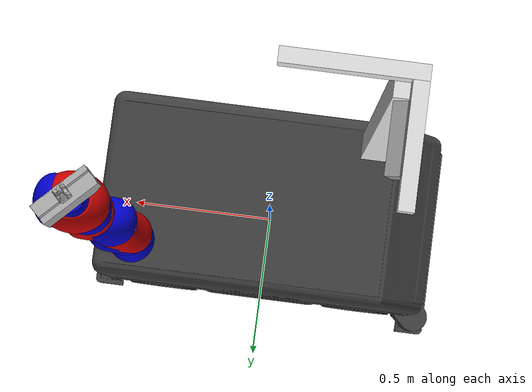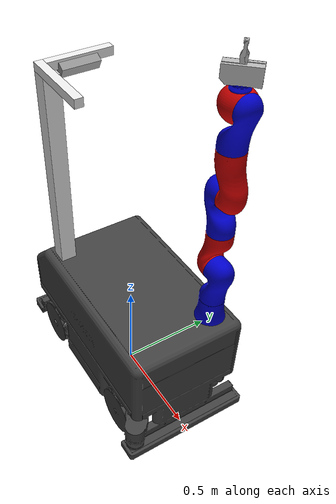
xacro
<?xml version="1.0"?>
<robot name="omnirob" xmlns:xacro="http://ros.org/wiki/xacro">
	<xacro:include
		filename="$(find omnirob_description)/urdf/xacro/omnirob.urdf.xacro" />
	<xacro:include filename="$(find omnirob_description)/urdf/xacro/lbr.urdf.xacro" />
	<xacro:include filename="$(find omnirob_description)/urdf/xacro/pole.urdf.xacro" />
	<xacro:include filename="$(find wsg_description)/urdf/wsg.urdf.xacro" />
	<xacro:include filename="$(find camera_description)/urdf/xacro/asus_xtion.urdf.xacro" />

	<xacro:omnirob_base></xacro:omnirob_base>

	<xacro:lbr name="lbr" parent="omnirob">
		<origin xyz="0.42 0.18 0.655" rpy="0 0 -1.5708" />
	</xacro:lbr>

	<xacro:pole name="pole" parent="base_link">
		<origin xyz="-0.35 -0.25 0.64" rpy="0 0 0" />
	</xacro:pole>

	<xacro:asus_xtion name="pole_camera" parent="pole_top2_link">
		<origin xyz="0.14 -0.01 0" rpy="0 0.5 -1.57" />
	</xacro:asus_xtion>

	<xacro:wsg name="wsg" parent_link_name="lbr">
	</xacro:wsg>

</robot>

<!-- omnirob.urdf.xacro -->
<robot xmlns:xacro="http://ros.org/wiki/xacro">
    <xacro:macro name="omnirob_base">
        <material name="Gray">
            <color rgba="0.25 0.25 0.25 1.0"/>
        </material>

        <link name="base_link" >
          <visual>
            <origin xyz="0 0 0" rpy="0 0 0" />
            <geometry>
              <mesh filename="package://omnirob_description/meshes/omnirob_hull.stl" scale="0.001 0.001 0.001"/>
            </geometry>
           <material name="Gray"/>
          </visual>
          <collision>
            <origin xyz="0 0 0" rpy="0 0 0" />
            <geometry>
              <mesh filename="package://omnirob_description/meshes/omnirob_hull_low_res.stl" scale="0.001 0.001 0.001"/>
            </geometry>
          </collision>
        </link>

        <link name="laser_front_link">
        </link>

        <link name="laser_rear_link">
        </link>

        <joint name="laser_front_joint" type="fixed">
          <parent link="base_link" />
          <child link="laser_front_link" />
          <origin xyz="0.542477 -0.317722 0.13664" rpy="0 0 -0.78893" />
        </joint>

        <joint name="laser_rear_joint" type="fixed">
          <parent link="base_link" />
          <child link="laser_rear_link" />
          <origin xyz="-0.534443 0.32895 0.13664" rpy="0 0 2.31624" />
		</joint>
	</xacro:macro>
</robot>

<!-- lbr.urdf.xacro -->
<!-- FROM: https://github.com/IDSCETHZurich/re_trajectory-generator -->
<robot xmlns:xacro="http://ros.org/wiki/xacro">

	<xacro:include filename="$(find omnirob_description)/urdf/xacro/lbr_only.urdf.xacro"/>

	<xacro:macro name="lbr" params="parent name *origin">

	<xacro:lbr_only name="${name}">
	</xacro:lbr_only>

	<joint name="${parent}_base_joint" type="fixed" >
		<origin xyz="0.42 0.18 0.655" rpy="0 0 -1.5708" />
		<parent link="base_link" />
		<child link="${name}_0_link" />
	</joint>

	</xacro:macro>

</robot>

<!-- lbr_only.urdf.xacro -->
<!-- FROM: https://github.com/IDSCETHZurich/re_trajectory-generator -->
<robot xmlns:xacro="http://ros.org/wiki/xacro">

  <!-- Import all Gazebo-customization elements, including Gazebo colors -->
	<xacro:include filename="$(find omnirob_description)/urdf/xacro/lbr_only.gazebo" />
	<!-- Import Rviz colors -->
	<xacro:include filename="$(find omnirob_description)/urdf/xacro/lbr_materials.xacro" />

	<xacro:macro name="lbr_only" params="name">

		<!-- Used for fixing robot to Gazebo 'base_link' -->

		<link name="${name}_0_link">
			<inertial>
				<origin xyz="0 0 0" rpy="0 0 0" />
				<mass value="1.0" />
				<inertia ixx="0.01" ixy="0" ixz="0" iyy="0.01" iyz="0" izz="0.01" />
			</inertial>

			<visual>
				<origin xyz="0 0 0" rpy="0 0 0" />
				<geometry>
					<mesh filename="package://omnirob_description/meshes/lbr0.stl" />
				</geometry>
				<material name="Blue" />
			</visual>

			<collision>
				<origin xyz="0 0 0" rpy="0 0 0" />
				<geometry>
					<mesh filename="package://omnirob_description/meshes/lbr0_low_res.stl" />
				</geometry>
			</collision>
		</link>

		<!-- joint between arm_0_link and arm_1_link -->
		<joint name="${name}_1_joint" type="revolute">
			<origin xyz="0 0 0.1105" rpy="0 0 0" />
			<parent link="${name}_0_link" />
			<child link="${name}_1_link" />
			<axis xyz="0 0 1" />
			<dynamics damping="25" />
			<limit effort="200" velocity="1.9634" lower="-2.9670" upper="2.9670" />
		</joint>

		<link name="${name}_1_link">
			<inertial>
				<origin xyz="0 0 0" rpy="0 0 0" />
				<mass value="5.9907" />
				<inertia ixx="0.01" ixy="0" ixz="0" iyy="0.01" iyz="0" izz="0.01" />
			</inertial>

			<visual>
				<origin xyz="0 0 0" rpy="0 0 0" />
				<geometry>
					<mesh filename="package://omnirob_description/meshes/lbr1.stl" />
				</geometry>
				<material name="Blue" />
			</visual>

			<collision>
				<origin xyz="0 0 0" rpy="0 0 0" />
				<geometry>
					<mesh filename="package://omnirob_description/meshes/lbr1_low_res.stl" />
				</geometry>
			</collision>
		</link>

		<!-- joint between arm_1_link and arm_2_link -->
		<joint name="${name}_2_joint" type="revolute">
			<origin xyz="0 0 0.1915" rpy="1.5708 0 0" />
			<parent link="${name}_1_link" />
			<child link="${name}_2_link" />
			<axis xyz="0 0 1" />
			<dynamics damping="25" />
			<limit effort="200" velocity="1.9634" lower="-2.0943" upper="2.0943" />
		</joint>

		<link name="${name}_2_link">
			<inertial>
				<origin xyz="0 0 0.002" rpy="0 0 0" />
				<mass value="5.734939" />
				<inertia ixx="0.03" ixy="0" ixz="0" iyy="0.03" iyz="0" izz="0.03" />
			</inertial>

			<visual>
				<origin xyz="0 0 0.002" rpy="0 0 0" />
				<geometry>
					<mesh filename="package://omnirob_description/meshes/lbr2.stl" />
				</geometry>
				<material name="Red" />
			</visual>

			<collision>
				<origin xyz="0 0 0.002" rpy="0 0 0" />
				<geometry>
					<mesh filename="package://omnirob_description/meshes/lbr2_low_res.stl" />
				</geometry>
			</collision>
		</link>

		<!-- joint between arm_2_link and arm_3_link -->
		<joint name="${name}_3_joint" type="revolute">
			<origin xyz="0 0.2085 0" rpy="-1.5708 0 0" />
			<parent link="${name}_2_link" />
			<child link="${name}_3_link" />
			<axis xyz="0 0 1" />
			<dynamics damping="25" />
			<limit effort="100" velocity="1.9634" lower="-2.9670" upper="2.9670" />
		</joint>

		<link name="${name}_3_link">
			<inertial>
				<origin xyz="0 -0.002 0" rpy="0 0 0" />
				<mass value="4.214668" />
				<inertia ixx="0.03" ixy="0" ixz="0" iyy="0.03" iyz="0" izz="0.03" />
			</inertial>

			<visual>
				<origin xyz="0 -0.002 0" rpy="0 0 0" />
				<geometry>
					<mesh filename="package://omnirob_description/meshes/lbr3.stl" />
				</geometry>
				<material name="Blue" />
			</visual>

			<collision>
				<origin xyz="0 -0.002 0" rpy="0 0 0" />
				<geometry>
					<mesh filename="package://omnirob_description/meshes/lbr3_low_res.stl" />
				</geometry>
			</collision>
		</link>

		<!-- joint between arm_3_link and arm_4_link -->
		<joint name="${name}_4_joint" type="revolute">
			<origin xyz="0 0 0.1915" rpy="-1.5708 0 0" />
			<parent link="${name}_3_link" />
			<child link="${name}_4_link" />
			<axis xyz="0 0 1" />
			<dynamics damping="25" />
			<limit effort="100" velocity="1.9634" lower="-2.0943" upper="2.0943" />
		</joint>

		<link name="${name}_4_link">
			<inertial>
				<origin xyz="0 0 0" rpy="0 0 0" />
				<mass value="3.669819" />
				<inertia ixx="0.03" ixy="0" ixz="0" iyy="0.03" iyz="0" izz="0.03" />
			</inertial>

			<visual>
				<origin xyz="0 0 0" rpy="0 0 0" />
				<geometry>
					<mesh filename="package://omnirob_description/meshes/lbr4.stl" />
				</geometry>
				<material name="Red" />
			</visual>

			<collision>
				<origin xyz="0 0 0" rpy="0 0 0" />
				<geometry>
					<mesh filename="package://omnirob_description/meshes/lbr4_low_res.stl" />
				</geometry>
			</collision>
		</link>

		<!-- joint between arm_4_link and arm_5_link -->
		<joint name="${name}_5_joint" type="revolute">
			<origin xyz="0 -0.2085 0" rpy="1.5708 0 0" />
			<parent link="${name}_4_link" />
			<child link="${name}_5_link" />
			<axis xyz="0 0 1" />
			<dynamics damping="25" />
			<limit effort="100" velocity="3.1415926" lower="-2.9670" upper="2.9670" />
		</joint>
		<link name="${name}_5_link">
			<inertial>
				<origin xyz="0 0 0" rpy="0 0 0" />
				<mass value="2.313272" />
				<inertia ixx="0.03" ixy="0" ixz="0" iyy="0.03" iyz="0" izz="0.03" />
			</inertial>

			<visual>
				<origin xyz="0 0 0" rpy="0 0 0" />
				<geometry>
					<mesh filename="package://omnirob_description/meshes/lbr5.stl" />
				</geometry>
				<material name="Blue" />
			</visual>

			<collision>
				<origin xyz="0 0 0" rpy="0 0 0" />
				<geometry>
					<mesh filename="package://omnirob_description/meshes/lbr5_low_res.stl" />
				</geometry>
			</collision>
		</link>

		<!-- joint between arm_5_link and arm_6_link -->
		<joint name="${name}_6_joint" type="revolute">
			<origin xyz="0 0 0.1815" rpy="1.5708 0 0" />
			<parent link="${name}_5_link" />
			<child link="${name}_6_link" />
			<axis xyz="0 0 1" />
			<dynamics damping="25" />
			<limit effort="30" velocity="1.9634" lower="-2.0943951" upper="2.0943951" />
		</joint>
		<link name="${name}_6_link">
			<inertial>
				<origin xyz="0 0 0" rpy="0 0 0" />
				<mass value="2.057856" />
				<inertia ixx="0.01" ixy="0" ixz="0" iyy="0.01" iyz="0" izz="0.01" />
			</inertial>

			<visual>
				<origin xyz="0 0 -0.046" rpy="0 0 0" />
				<geometry>
					<mesh filename="package://omnirob_description/meshes/lbr6.stl" />
				</geometry>
				<material name="Red" />
			</visual>

			<collision>
				<origin xyz="0 0 -0.046" rpy="0 0 0" />
				<geometry>
					<mesh filename="package://omnirob_description/meshes/lbr6_low_res.stl" />
				</geometry>
			</collision>
		</link>

		<!-- joint between arm_6_link and arm_7_link -->
		<joint name="${name}_7_joint" type="revolute">
			<origin xyz="0 0.057 0" rpy="-1.5708 0 0" />
			<parent link="${name}_6_link" />
			<child link="${name}_7_link" />
			<axis xyz="0 0 1" />
			<dynamics damping="25" />
			<limit effort="30" velocity="1.9634" lower="-2.9670" upper="2.9670" />
		</joint>
		<link name="${name}_7_link">
			<inertial>
				<origin xyz="0 0 0" rpy="0 0 0" />
				<mass value="1.120198" />
				<inertia ixx="0.01" ixy="0" ixz="0" iyy="0.01" iyz="0" izz="0.01" />
			</inertial>

			<visual>
				<origin xyz="0 0 0" rpy="0 0 0" />
				<geometry>
					<mesh filename="package://omnirob_description/meshes/lbr7.stl" />
				</geometry>
				<material name="Blue" />
			</visual>

			<collision>
				<origin xyz="0 0 0" rpy="0 0 0" />
				<geometry>
					<mesh filename="package://omnirob_description/meshes/lbr7_low_res.stl" />
				</geometry>
			</collision>
		</link>

		<joint name="flange" type="fixed">
    		<parent link="${name}_7_link"/>
   			<child link="${name}_flange_link"/>
    		<origin rpy="0 0 0" xyz="0 0 0.0195"/>
 		</joint>

		<link name="${name}_flange_link">
		</link>

		<transmission name="${name}_1_joint_trans">
			<type>pr2_mechanism_model/SimpleTransmission</type>
			<joint name="${name}_1_joint">
			  <hardwareInterface>EffortJointInterface</hardwareInterface>
			</joint>
			<actuator name="${name}_1_joint_motor">
			  <hardwareInterface>EffortJointInterface</hardwareInterface>
			  <mechanicalReduction>1</mechanicalReduction>
			</actuator>
		</transmission>

		<transmission name="${name}_2_joint_trans">
			<type>pr2_mechanism_model/SimpleTransmission</type>
			<joint name="${name}_2_joint">
			   <hardwareInterface>EffortJointInterface</hardwareInterface>
			</joint>
			<actuator name="${name}_2_joint_motor">
			  <hardwareInterface>EffortJointInterface</hardwareInterface>
			  <mechanicalReduction>1</mechanicalReduction>
			</actuator>
		</transmission>

		<transmission name="${name}_3_joint_trans">
			<type>pr2_mechanism_model/SimpleTransmission</type>
			<joint name="${name}_3_joint">
			   <hardwareInterface>EffortJointInterface</hardwareInterface>
			</joint>
			<actuator name="${name}_3_joint_motor">
			  <hardwareInterface>EffortJointInterface</hardwareInterface>
			  <mechanicalReduction>1</mechanicalReduction>
			</actuator>
		</transmission>

		<transmission name="${name}_4_joint_trans">
			<type>pr2_mechanism_model/SimpleTransmission</type>
			<joint name="${name}_4_joint">
			   <hardwareInterface>EffortJointInterface</hardwareInterface>
			</joint>
			<actuator name="${name}_4_joint_motor">
			  <hardwareInterface>EffortJointInterface</hardwareInterface>
			  <mechanicalReduction>1</mechanicalReduction>
			</actuator>
		</transmission>

		<transmission name="${name}_5_joint_trans">
			<type>pr2_mechanism_model/SimpleTransmission</type>
			<actuator name="${name}_5_joint_motor">
			  <hardwareInterface>EffortJointInterface</hardwareInterface>
			  <mechanicalReduction>1</mechanicalReduction>
			</actuator>
			<joint name="${name}_5_joint">
			   <hardwareInterface>EffortJointInterface</hardwareInterface>
			</joint>
		</transmission>

		<transmission name="${name}_6_joint_trans">
			<type>pr2_mechanism_model/SimpleTransmission</type>
			<actuator name="${name}_6_joint_motor">
			  <hardwareInterface>EffortJointInterface</hardwareInterface>
			  <mechanicalReduction>1</mechanicalReduction>
			</actuator>
			<joint name="${name}_6_joint">
			   <hardwareInterface>EffortJointInterface</hardwareInterface>
			</joint>
		</transmission>

		<transmission name="${name}_7_joint_trans">
			<type>pr2_mechanism_model/SimpleTransmission</type>
			<actuator name="${name}_7_joint_motor">
			  <hardwareInterface>EffortJointInterface</hardwareInterface>
			  <mechanicalReduction>1</mechanicalReduction>
			</actuator>
			<joint name="${name}_7_joint">
			   <hardwareInterface>EffortJointInterface</hardwareInterface>
			</joint>
		</transmission>

	</xacro:macro>

</robot>

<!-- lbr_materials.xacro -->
<robot>

	<material name="Blue">
		<color rgba="0.0 0.0 0.8 1.0" />
	</material>

	<material name="Green">
		<color rgba="0.0 0.8 0.0 1.0" />
	</material>

	<material name="Grey">
		<color rgba="0.7 0.7 0.7 1.0" />
	</material>

	<material name="Grey2">
		<color rgba="0.9 0.9 0.9 1.0" />
	</material>

	<material name="Red">
		<color rgba="0.8 0.0 0.0 1.0" />
	</material>

	<material name="orange">
	  <color rgba="${255/255} ${108/255} ${10/255} 1.0"/>
	</material>

	<material name="brown">
	  <color rgba="${222/255} ${207/255} ${195/255} 1.0"/>
	</material>

	<material name="White">
		<color rgba="1.0 1.0 1.0 1.0" />
	</material>

	<material name="Black">
		<color rgba="0.0 0.0 0.0 1.0" />
	</material>

</robot>

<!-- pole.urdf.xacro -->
<!-- FROM: https://github.com/IDSCETHZurich/re_trajectory-generator -->
<robot xmlns:xacro="http://ros.org/wiki/xacro">

	<material name="pole_gray">
		<color rgba="0.9 0.9 0.9 1.0" />
	</material>

	<xacro:macro name="pole" params="parent name *origin">
		<joint name="${name}_base_joint" type="fixed">
			<insert_block name="origin" />
			<parent link="${parent}" />
			<child link="${name}_base_link" />
		</joint>

		<link name="${name}_base_link">
			<visual>
				<geometry>
					<box size="0.08 0.08 1.01" />
				</geometry>
				<origin xyz="0.04 0.04 0.505" />
				<material name="pole_gray" />
			</visual>
			<collision>
				<geometry>
					<box size="0.08 0.08 1.01" />
				</geometry>
				<origin xyz="0.04 0.04 0.505" />
			</collision>
		</link>

		<joint name="${name}_top_joint" type="fixed">
			<parent link="${name}_base_link" />
			<child link="${name}_top_link" />
			<origin xyz="0 0 1.01" rpy="0 0 0" />
		</joint>

		<!-- to front -->
		<link name="${name}_top_link">
			<visual>
				<geometry>
					<box size="0.36 0.04 0.04" />
				</geometry>
				<origin xyz="0.18 0.02 0.02" />
				<material name="pole_gray" />
			</visual>
			<collision>
				<geometry>
					<box size="0.36 0.04 0.04" />
				</geometry>
				<origin xyz="0.18 0.02 0.02" />
			</collision>
		</link>

		<joint name="${name}_top2_joint" type="fixed">
			<parent link="${name}_base_link" />
			<child link="${name}_top2_link" />
			<origin xyz="0.04 0.04 1.01" rpy="0 0 1.57" />
		</joint>

		<!-- to left -->
		<link name="${name}_top2_link">
			<visual>
				<geometry>
					<box size="0.31 0.04 0.04" />
				</geometry>
				<origin xyz="0.155 0.02 0.02" />
				<material name="pole_gray" />
			</visual>
			<collision>
				<geometry>
					<box size="0.31 0.04 0.04" />
				</geometry>
				<origin xyz="0.155 0.02 0.02" />
			</collision>
		</link>
	</xacro:macro>

</robot>

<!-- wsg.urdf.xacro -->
<robot xmlns:xacro="http://www.ros.org/wiki/xacro">

	<xacro:macro name="wsg" params="name parent_link_name">

		<material name="lightGrey">
			<color rgba="0.7 0.7 0.7 1.0" />
		</material>

		<link name="${name}_gripper_tip_frame">
		</link>

		<link name="${name}_gripper_l_tip_frame">
			<visual>
				<geometry>
					<mesh filename="package://wsg_description/meshes/grip_low_res.stl" />
				</geometry>
				<material name="lightGrey" />
				<origin xyz="0 -0.0185 -0.040" rpy="-1.57 0 -1.57" />
			</visual>
			<collision>
				<origin xyz="0 -0.0185 -0.040" rpy="-1.57 0 -1.57" />
				<geometry>
					<mesh filename="package://wsg_description/meshes/grip_low_res.stl" />
				</geometry>
			</collision>
		</link>

		<link name="${name}_gripper_r_tip_frame">
			<visual>
				<geometry>
					<mesh filename="package://wsg_description/meshes/grip_low_res.stl" />
				</geometry>
				<material name="lightGrey" />
				<origin xyz="0 0.0185 -0.040" rpy="-1.57 0 1.57" />
			</visual>
			<collision>
				<origin xyz="0 0.0185 -0.040" rpy="-1.57 0 1.57" />
				<geometry>
					<mesh filename="package://wsg_description/meshes/grip_low_res.stl" />
				</geometry>
			</collision>
		</link>

		<link name="${name}_palm_frame">
			<visual>
				<geometry>
					<mesh filename="package://wsg_description/meshes/palm_low_res.stl" />
				</geometry>
				<material name="lightGrey" />
				<origin xyz="0 0 0.0725" />
			</visual>
			<collision>
				<geometry>
					<mesh filename="package://wsg_description/meshes/palm_collision.stl" />
				</geometry>
				<material name="lightGrey" />
				<origin xyz="0 0 0.0725" />
			</collision>
		</link>

		<!-- Connection to omnirob -->
		<joint name="${name}_gripper_palm" type="fixed">
			<!--parent link="lbr_flange_link" /-->
			<parent link="${parent_link_name}_flange_link" />
			<child link="${name}_palm_frame" />
			<!--insert_block name="origin"/ -->
			<!--origin xyz="0.0 0.0 0.0725" rpy="0 0 0"/ -->
			<!--origin xyz="0.0 0.005 0.171" rpy="0 0 0" / -->
			<origin rpy="0 0 -0.785398" xyz="0.0 0.0 0.0"/>
		</joint>

		<joint name="${name}_gripper_tip" type="fixed">
			<parent link="${name}_palm_frame" />
			<child link="${name}_gripper_tip_frame" />
			<origin xyz="0.0 0.0 0.1085" rpy="0 0 0" />
			<!--origin xyz="0.0 0.0 0.0721" rpy="1.57 0 0"/ -->
		</joint>

		<joint name="${name}_gripper_l_tip" type="prismatic">
			<parent link="${name}_palm_frame" />
			<child link="${name}_gripper_l_tip_frame" />
			<axis xyz="-1 0 0"/>
			<origin xyz="0 0 0.0725" rpy="0 0 0" />
			<limit lower="0.0" upper="0.07" effort="20" velocity="2.0"/>
		</joint>

		<joint name="${name}_gripper_r_tip" type="prismatic">
			<parent link="${name}_palm_frame" />
			<child link="${name}_gripper_r_tip_frame" />
			<axis xyz="1 0 0"/>
			<origin xyz="0 0 0.0725" rpy="0 0 0" />
			<limit lower="0.0" upper="0.07" effort="20" velocity="2.0"/>
		</joint>

	</xacro:macro>

</robot>

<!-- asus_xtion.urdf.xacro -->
<robot xmlns:sensor="http://playerstage.sourceforge.net/gazebo/xmlschema/#sensor"
	xmlns:controller="http://playerstage.sourceforge.net/gazebo/xmlschema/#controller"
	xmlns:interface="http://playerstage.sourceforge.net/gazebo/xmlschema/#interface"
	xmlns:xacro="http://ros.org/wiki/xacro">

	<xacro:include filename="$(find camera_description)/urdf/xacro/asus_xtion_only.urdf.xacro"/>

	<xacro:macro name="asus_xtion" params="name parent *origin">
		<joint name="${name}_base_joint" type="fixed">
			<parent link="${parent}" />
			<child link="${name}_link" />
			<insert_block name="origin" />
		</joint>

		<xacro:asus_xtion_only name="${name}"></xacro:asus_xtion_only>
	</xacro:macro>

</robot>

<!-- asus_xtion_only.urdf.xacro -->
<robot xmlns:sensor="http://playerstage.sourceforge.net/gazebo/xmlschema/#sensor"
	xmlns:controller="http://playerstage.sourceforge.net/gazebo/xmlschema/#controller"
	xmlns:interface="http://playerstage.sourceforge.net/gazebo/xmlschema/#interface"
	xmlns:xacro="http://ros.org/wiki/xacro">

	<material name="asus_xtion_gray">
		<color rgba="0.6 0.6 0.6 1.0" />
	</material>

	<xacro:macro name="asus_xtion_only" params="name">
		<link name="${name}_depth_frame"></link>
		<link name="${name}_rgb_frame"></link>
		<link name="${name}_depth_optical_frame"></link>
		<link name="${name}_rgb_optical_frame"></link>

		<link name="${name}_link">
			<visual>
				<geometry>
					<box size="0.04 0.18 0.048" />
				</geometry>
				<origin xyz="0 0 0" />
				<material name="asus_xtion_gray" />
			</visual>
			<collision>
				<geometry>
					<box size="0.04 0.18 0.048" />
				</geometry>
				<origin xyz="0 0 0" />
			</collision>
		</link>

		<joint name="${name}_joint1" type="fixed">
			<parent link="${name}_link" />
			<child link="${name}_depth_frame" />
			<origin xyz="0 0.049 0.013" rpy="0 0 0" />
		</joint>

		<joint name="${name}_joint2" type="fixed">
			<parent link="${name}_link" />
			<child link="${name}_rgb_frame" />
			<origin xyz="0 0.022 0.013" rpy="0 0 0" />
		</joint>

		<joint name="${name}_joint3" type="fixed">
			<parent link="${name}_depth_frame" />
			<child link="${name}_depth_optical_frame" />
			<origin xyz="0 0 0" rpy="-1.57 0 -1.57" />
		</joint>

		<joint name="${name}_joint4" type="fixed">
			<parent link="${name}_rgb_frame" />
			<child link="${name}_rgb_optical_frame" />
			<origin xyz="0 0 0" rpy="-1.57 0 -1.57" />
		</joint>
	</xacro:macro>

</robot>
